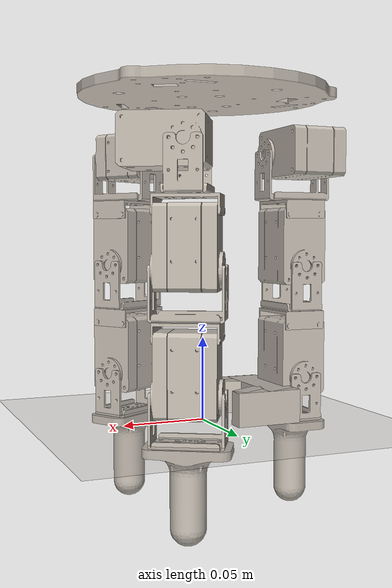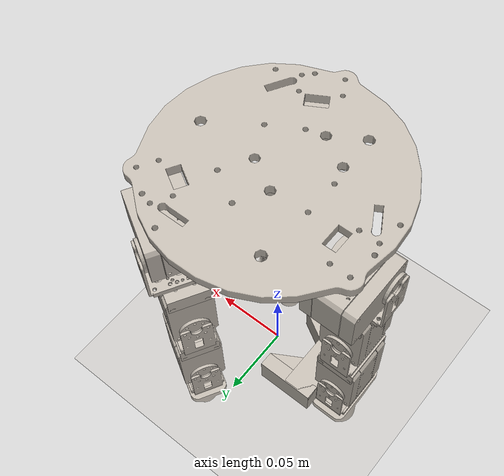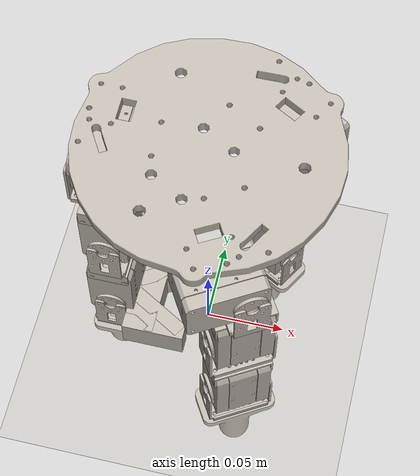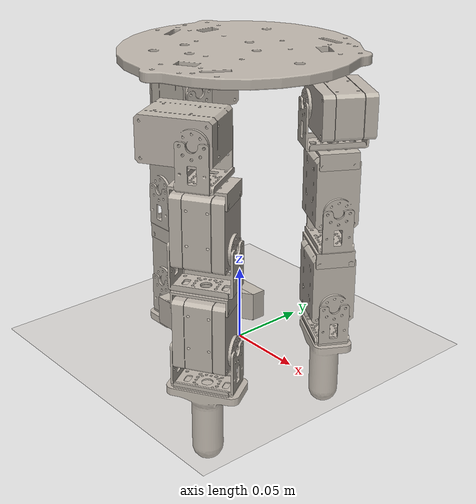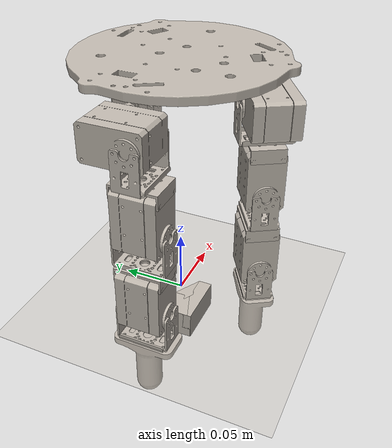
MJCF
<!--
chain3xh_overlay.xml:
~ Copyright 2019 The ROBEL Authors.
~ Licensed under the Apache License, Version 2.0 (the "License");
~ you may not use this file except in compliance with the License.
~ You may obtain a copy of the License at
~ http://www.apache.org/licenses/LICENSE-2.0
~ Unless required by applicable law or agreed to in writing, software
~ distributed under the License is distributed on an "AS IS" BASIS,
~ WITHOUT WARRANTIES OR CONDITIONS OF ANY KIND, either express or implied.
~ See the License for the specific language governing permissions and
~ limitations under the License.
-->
<?xml version="1.0"?>
<mujoco model="dclaw3xh_trapezoid_block_mating">
  <include file="/scenes/scene_default.xml"/>
  <include file="/robot/assets/dependencies_3xh_position.xml"/>
  <include file="/trapezoid_block/assets/dependencies_trapezoid_block.xml"/>

  <size njmax="8000" nconmax="4000"/>

  <worldbody>
    <camera name="canonical"            mode= "fixed" euler="0 0 1.5707963267948966" pos="0 0 0.192"/>
    <camera name="random"               mode= "fixed" euler="0 0 1.5707963267948966" pos="0 0 0.192"/>
    <camera name="canonical_nonfix"     mode= "fixed" euler="0 0 1.5707963267948966" pos="0 0 0.192"/>
    <camera name="random_nonfix"        mode= "fixed" euler="0 0 1.5707963267948966" pos="0 0 0.192"/>
    <camera name="canonical_overview"   mode= "fixed" euler="0 1 1.57" pos="0.3 0 0.4"/>
    <camera name="top"                  mode= "fixed" euler="0 0 1.57" pos="0 0 3"/>

    <body name="mount" pos="0 0 0.195" euler="0 0 0">
      <include file="./robot/assets/chain3xh_default.xml"/>
      <include file="./robot/assets/chain3xh_overlay.xml"/>
    </body>

    <body name="object1" pos="-0.04 0.0 0.0001">
      <include file="/trapezoid_block/assets/trapezoid_block1.xml"/>
    </body>

  </worldbody>
</mujoco>

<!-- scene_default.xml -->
<mujocoinclude>
  <asset>
    <texture name="skybox" type="skybox" builtin="gradient" rgb1=".08 .09 .10" rgb2="0 0 0" width="800" height="800" mark="random" markrgb=".8 .8 .8"/>

    <!-- Finger 1 -->
    <texture name="FFbase_xh28_tex"                type="2d" file="./pattern/pattern_default_crop.png" rgb1="1 1 1"/>
    <texture name="FF10_xh28_tex"                  type="2d" file="./pattern/pattern_default_crop.png" rgb1="1 1 1"/>
    <texture name="FF10_metal_clamping_tex"        type="2d" file="./pattern/pattern_default_crop.png" rgb1="1 1 1"/>
    <texture name="FF10_metal_clamping_small_tex"  type="2d" file="./pattern/pattern_default_crop.png" rgb1="1 1 1"/>
    <texture name="FFL11_xh28_tex"                 type="2d" file="./pattern/pattern_default_crop.png" rgb1="1 1 1"/>
    <texture name="FFL11_metal_clamping_tex"       type="2d" file="./pattern/pattern_default_crop.png" rgb1="1 1 1"/>
    <texture name="FFL11_metal_clamping_small_tex" type="2d" file="./pattern/pattern_default_crop.png" rgb1="1 1 1"/>
    <texture name="FFL11_plastic_finger_tex"       type="2d" file="./pattern/pattern_default_crop.png" rgb1="1 1 1"/>
    <texture name="FFL12_metal_clamping_tex"       type="2d" file="./pattern/pattern_default_crop.png" rgb1="1 1 1"/>
    <texture name="FFL12_plastic_finger_tex"       type="2d" file="./pattern/pattern_default_crop.png" rgb1="1 1 1"/>
    <texture name="FFL12_optoforce_sensor_tex"     type="2d" file="./pattern/pattern_default_crop.png" rgb1="1 1 1"/>
    <texture name="FFL12_optoforce_base_tex"       type="2d" file="./pattern/pattern_default_crop.png" rgb1="1 1 1"/>
    <material name="FFbase_xh28_mat"                shininess="0.03" specular="0.75" texture="FFbase_xh28_tex"></material>
    <material name="FF10_xh28_mat"                  shininess="0.03" specular="0.75" texture="FF10_xh28_tex"></material>
    <material name="FF10_metal_clamping_mat"        shininess="0.03" specular="0.75" texture="FF10_metal_clamping_tex"></material>
    <material name="FF10_metal_clamping_small_mat"  shininess="0.03" specular="0.75" texture="FF10_metal_clamping_small_tex"></material>
    <material name="FFL11_xh28_mat"                 shininess="0.03" specular="0.75" texture="FFL11_xh28_tex"></material>
    <material name="FFL11_metal_clamping_mat"       shininess="0.03" specular="0.75" texture="FFL11_metal_clamping_tex"></material>
    <material name="FFL11_metal_clamping_small_mat" shininess="0.03" specular="0.75" texture="FFL11_metal_clamping_small_tex"></material>
    <material name="FFL11_plastic_finger_mat"       shininess="0.03" specular="0.75" texture="FFL11_plastic_finger_tex"></material>
    <material name="FFL12_metal_clamping_mat"       shininess="0.03" specular="0.75" texture="FFL12_metal_clamping_tex"></material>
    <material name="FFL12_plastic_finger_mat"       shininess="0.03" specular="0.75" texture="FFL12_plastic_finger_tex"></material>
    <material name="FFL12_optoforce_sensor_mat"     shininess="0.03" specular="0.75" texture="FFL12_optoforce_sensor_tex"></material>
    <material name="FFL12_optoforce_base_mat"       shininess="0.03" specular="0.75" texture="FFL12_optoforce_base_tex"></material>

    <!-- Finger 2 -->
    <texture name="MFbase_xh28_tex"                type="2d" file="./pattern/pattern_default_crop.png" rgb1="1 1 1"/>
    <texture name="MF20_xh28_tex"                  type="2d" file="./pattern/pattern_default_crop.png" rgb1="1 1 1"/>
    <texture name="MF20_metal_clamping_tex"        type="2d" file="./pattern/pattern_default_crop.png" rgb1="1 1 1"/>
    <texture name="MF20_metal_clamping_small_tex"  type="2d" file="./pattern/pattern_default_crop.png" rgb1="1 1 1"/>
    <texture name="MFL21_xh28_tex"                 type="2d" file="./pattern/pattern_default_crop.png" rgb1="1 1 1"/>
    <texture name="MFL21_metal_clamping_tex"       type="2d" file="./pattern/pattern_default_crop.png" rgb1="1 1 1"/>
    <texture name="MFL21_metal_clamping_small_tex" type="2d" file="./pattern/pattern_default_crop.png" rgb1="1 1 1"/>
    <texture name="MFL21_plastic_finger_tex"       type="2d" file="./pattern/pattern_default_crop.png" rgb1="1 1 1"/>
    <texture name="MFL22_metal_clamping_tex"       type="2d" file="./pattern/pattern_default_crop.png" rgb1="1 1 1"/>
    <texture name="MFL22_plastic_finger_tex"       type="2d" file="./pattern/pattern_default_crop.png" rgb1="1 1 1"/>
    <texture name="MFL22_optoforce_sensor_tex"     type="2d" file="./pattern/pattern_default_crop.png" rgb1="1 1 1"/>
    <texture name="MFL22_optoforce_base_tex"       type="2d" file="./pattern/pattern_default_crop.png" rgb1="1 1 1"/>
    <material name="MFbase_xh28_mat"                shininess="0.03" specular="0.75" texture="MFbase_xh28_tex"></material>
    <material name="MF20_xh28_mat"                  shininess="0.03" specular="0.75" texture="MF20_xh28_tex"></material>
    <material name="MF20_metal_clamping_mat"        shininess="0.03" specular="0.75" texture="MF20_metal_clamping_tex"></material>
    <material name="MF20_metal_clamping_small_mat"  shininess="0.03" specular="0.75" texture="MF20_metal_clamping_small_tex"></material>
    <material name="MFL21_xh28_mat"                 shininess="0.03" specular="0.75" texture="MFL21_xh28_tex"></material>
    <material name="MFL21_metal_clamping_mat"       shininess="0.03" specular="0.75" texture="MFL21_metal_clamping_tex"></material>
    <material name="MFL21_metal_clamping_small_mat" shininess="0.03" specular="0.75" texture="MFL21_metal_clamping_small_tex"></material>
    <material name="MFL21_plastic_finger_mat"       shininess="0.03" specular="0.75" texture="MFL21_plastic_finger_tex"></material>
    <material name="MFL22_metal_clamping_mat"       shininess="0.03" specular="0.75" texture="MFL22_metal_clamping_tex"></material>
    <material name="MFL22_plastic_finger_mat"       shininess="0.03" specular="0.75" texture="MFL22_plastic_finger_tex"></material>
    <material name="MFL22_optoforce_sensor_mat"     shininess="0.03" specular="0.75" texture="MFL22_optoforce_sensor_tex"></material>
    <material name="MFL22_optoforce_base_mat"       shininess="0.03" specular="0.75" texture="MFL22_optoforce_base_tex"></material>

    <!-- Finger 3 -->
    <texture name="THbase_xh28_tex"                type="2d" file="./pattern/pattern_default_crop.png" rgb1="1 1 1"/>
    <texture name="TH30_xh28_tex"                  type="2d" file="./pattern/pattern_default_crop.png" rgb1="1 1 1"/>
    <texture name="TH30_metal_clamping_tex"        type="2d" file="./pattern/pattern_default_crop.png" rgb1="1 1 1"/>
    <texture name="TH30_metal_clamping_small_tex"  type="2d" file="./pattern/pattern_default_crop.png" rgb1="1 1 1"/>
    <texture name="THL31_xh28_tex"                 type="2d" file="./pattern/pattern_default_crop.png" rgb1="1 1 1"/>
    <texture name="THL31_metal_clamping_tex"       type="2d" file="./pattern/pattern_default_crop.png" rgb1="1 1 1"/>
    <texture name="THL31_metal_clamping_small_tex" type="2d" file="./pattern/pattern_default_crop.png" rgb1="1 1 1"/>
    <texture name="THL31_plastic_finger_tex"       type="2d" file="./pattern/pattern_default_crop.png" rgb1="1 1 1"/>
    <texture name="THL32_metal_clamping_tex"       type="2d" file="./pattern/pattern_default_crop.png" rgb1="1 1 1"/>
    <texture name="THL32_plastic_finger_tex"       type="2d" file="./pattern/pattern_default_crop.png" rgb1="1 1 1"/>
    <texture name="THL32_optoforce_sensor_tex"     type="2d" file="./pattern/pattern_default_crop.png" rgb1="1 1 1"/>
    <texture name="THL32_optoforce_base_tex"       type="2d" file="./pattern/pattern_default_crop.png" rgb1="1 1 1"/>
    <material name="THbase_xh28_mat"                shininess="0.03" specular="0.75" texture="THbase_xh28_tex"></material>
    <material name="TH30_xh28_mat"                  shininess="0.03" specular="0.75" texture="TH30_xh28_tex"></material>
    <material name="TH30_metal_clamping_mat"        shininess="0.03" specular="0.75" texture="TH30_metal_clamping_tex"></material>
    <material name="TH30_metal_clamping_small_mat"  shininess="0.03" specular="0.75" texture="TH30_metal_clamping_small_tex"></material>
    <material name="THL31_xh28_mat"                 shininess="0.03" specular="0.75" texture="THL31_xh28_tex"></material>
    <material name="THL31_metal_clamping_mat"       shininess="0.03" specular="0.75" texture="THL31_metal_clamping_tex"></material>
    <material name="THL31_metal_clamping_small_mat" shininess="0.03" specular="0.75" texture="THL31_metal_clamping_small_tex"></material>
    <material name="THL31_plastic_finger_mat"       shininess="0.03" specular="0.75" texture="THL31_plastic_finger_tex"></material>
    <material name="THL32_metal_clamping_mat"       shininess="0.03" specular="0.75" texture="THL32_metal_clamping_tex"></material>
    <material name="THL32_plastic_finger_mat"       shininess="0.03" specular="0.75" texture="THL32_plastic_finger_tex"></material>
    <material name="THL32_optoforce_sensor_mat"     shininess="0.03" specular="0.75" texture="THL32_optoforce_sensor_tex"></material>
    <material name="THL32_optoforce_base_mat"       shininess="0.03" specular="0.75" texture="THL32_optoforce_base_tex"></material>

    <!-- xh28 -->
    <texture name="xh28_tex" type="2d" file="./pattern/pattern_default_crop.png" rgb1="1 1 1"/>
    <material name="xh28_mat" shininess="0.03" specular="0.75" texture="xh28_tex"></material>

    <!-- acrylic_circle -->
    <texture name="acrylic_circle_tex" type="2d" file="./pattern/pattern_default_crop.png" rgb1="1 1 1"/>
    <material name="acrylic_circle_mat" shininess="0.03" specular="0.75" texture="acrylic_circle_tex"></material>

    <!-- floor -->
    <texture name="floor_tex" type="2d" file="./pattern/pattern_default_crop.png" rgb1="1 1 1"/>
    <material name="floor_mat" shininess="0.03" specular="0.75" texture="floor_tex"></material>

    <!-- mount -->
    <texture name="mount_tex" type="2d" file="./pattern/pattern_default_crop.png" rgb1="1 1 1"/>
    <material name="mount_mat" shininess="0.03" specular="0.75" texture="mount_tex"></material>

    <!-- valve_3 -->
    <texture name="valve_3_tex" type="2d" file="./pattern/pattern_default_crop.png" rgb1="1 1 1"/>
    <material name="valve_3_mat" shininess="0.03" specular="0.75" texture="valve_3_tex"></material>

    <!-- valve_3 individual -->
    <texture name="valve_3fin_handle_1_tex" type="2d" file="./pattern/pattern_default_crop.png" rgb1="1 1 1"/>
    <texture name="valve_3fin_handle_2_tex" type="2d" file="./pattern/pattern_default_crop.png" rgb1="1 1 1"/>
    <texture name="valve_3fin_handle_3_tex" type="2d" file="./pattern/pattern_default_crop.png" rgb1="1 1 1"/>
    <texture name="valve_3fin_center_tex"   type="2d" file="./pattern/pattern_default_crop.png" rgb1="1 1 1"/>
    <material name="valve_3fin_handle_1_mat" shininess="0.03" specular="0.75" texture="valve_3fin_handle_1_tex"></material>
    <material name="valve_3fin_handle_2_mat" shininess="0.03" specular="0.75" texture="valve_3fin_handle_2_tex"></material>
    <material name="valve_3fin_handle_3_mat" shininess="0.03" specular="0.75" texture="valve_3fin_handle_3_tex"></material>
    <material name="valve_3fin_center_mat"   shininess="0.03" specular="0.75" texture="valve_3fin_center_tex"></material>

  </asset>

  <visual>
    <quality shadowsize="1024" offsamples="4"/>
  </visual>

  <worldbody>

    <light name="light_top_1" directional="true" diffuse=".3 .3 .3" specular="0.3 0.3 0.3" pos="-0.5 -0.5 1.0" active="false" dir="0.5 0.5 -1"/>
    <light name="light_top_2" directional="true" diffuse=".3 .3 .3" specular="0.3 0.3 0.3" pos="0.0 -0.5 1.0"  active="false" dir="0.0 0.5 -1"/>
    <light name="light_top_3" directional="true" diffuse=".3 .3 .3" specular="0.3 0.3 0.3" pos="0.5 -0.5 1.0"  active="true" dir="-0.5 0.5 -1"/>
    <light name="light_top_4" directional="true" diffuse=".3 .3 .3" specular="0.3 0.3 0.3" pos="-0.5 0.0 1.0"  active="false" dir="0.5 0 -1"/>
    <light name="light_top_5" directional="true" diffuse=".3 .3 .3" specular="0.3 0.3 0.3" pos="0.0 0.0 1.0"   active="false" dir="0 0 -1"/>
    <light name="light_top_6" directional="true" diffuse=".3 .3 .3" specular="0.3 0.3 0.3" pos="0.5 0.0 1.0"   active="false" dir="-0.5 0 -1"/>
    <light name="light_top_7" directional="true" diffuse=".3 .3 .3" specular="0.3 0.3 0.3" pos="-0.5 0.5 1.0"  active="true" dir=" 0.5 -0.5 -1"/>
    <light name="light_top_8" directional="true" diffuse=".3 .3 .3" specular="0.3 0.3 0.3" pos="0.0 0.5 1.0"   active="false" dir=" 0.0 -0.5 -1"/>
    <light name="light_top_9" directional="true" diffuse=".3 .3 .3" specular="0.3 0.3 0.3" pos="0.5 0.5 1.0"   active="false" dir="-0.5 -0.5 -1"/>

    <light name="light_side_1" directional="true" diffuse=".3 .3 .3" specular="0.3 0.3 0.3" pos="0.0 0.5 0.2"   active="false" dir=" 0.0 -0.5 0.0"/>
    <light name="light_side_2" directional="true" diffuse=".3 .3 .3" specular="0.3 0.3 0.3" pos="0.0 -0.5 0.2"  active="false" dir=" 0.0 0.5 0.0"/>
    <light name="light_side_3" directional="true" diffuse=".3 .3 .3" specular="0.3 0.3 0.3" pos="0.5 0.0 0.2"   active="false" dir="-0.5 0.0 0.0"/>
    <light name="light_side_4" directional="true" diffuse=".3 .3 .3" specular="0.3 0.3 0.3" pos="-0.5 0.0 0.2"  active="false" dir=" 0.5 0.0 0.0"/>
    <light name="light_side_5" directional="true" diffuse=".3 .3 .3" specular="0.3 0.3 0.3" pos="-0.5 0.5 0.2"  active="false" dir=" 0.5 -0.5 0.0"/>
    <light name="light_side_6" directional="true" diffuse=".3 .3 .3" specular="0.3 0.3 0.3" pos=" 0.5 -0.5 0.2" active="false" dir="-0.5 0.5 0.0"/>
    <light name="light_side_7" directional="true" diffuse=".3 .3 .3" specular="0.3 0.3 0.3" pos="-0.5 -0.5 0.2" active="false" dir=" 0.5 0.5 0.0"/>
    <light name="light_side_8" directional="true" diffuse=".3 .3 .3" specular="0.3 0.3 0.3" pos=" 0.5  0.5 0.2" active="false" dir="-0.5 -0.5 0.0"/>

    <geom name="floor" pos="0 0 0"  size="0.25 0.25 .1" conaffinity="1" contype="1" type="plane" condim="3" material="floor_mat"/>
    <site name="xaxis" pos=".5 0 0" size=".005 .5" type="capsule" rgba="1 0 0 .25" euler="0 1.57 0" group="3"/>
    <site name="yaxis" pos="0 .5 0" size=".005 .5" type="capsule" rgba="0 1 0 .25" euler="1.57 0 0" group="3"/>
  </worldbody>
</mujocoinclude>

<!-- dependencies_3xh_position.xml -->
<mujocoinclude>
  <compiler angle="radian" inertiafromgeom="auto" inertiagrouprange="3 5" />
  <option timestep="0.0025" iterations="50" tolerance="1e-10" solver="Newton" jacobian="dense" cone="elliptic"/>
  <asset>
    <mesh name="xh28"                 file="./robot/meshes/xh_base_high_poly.stl"            scale=".001 .001 .001"/>
    <mesh name="acrylic_circle"       file="./robot/meshes/acrylic_circle.stl"               scale=".1 .1 .1"/>
    <mesh name="plastic_finger"       file="./robot/meshes/xh_finger_tip.stl"                scale=".001 .001 .001"/>
    <mesh name="finger_for_optoforce" file="./robot/meshes/finger_for_optoforce.stl"         scale=".001 .001 .001"/>
    <mesh name="optoforce_sensor"     file="./robot/meshes/OPTOFORCE_OMD-20-SE-40N.stl"      scale=".001 .001 .001"/>
    <mesh name="optoforce_base"       file="./robot/meshes/optoforce_base.stl"               scale=".001 .001 .001"/>
    <mesh name="metal_clamping"       file="./robot/meshes/xh_clamping_high_poly.stl"        scale=".001 .001 .001"/>
    <mesh name="metal_clamping_small" file="./robot/meshes/xh_clamping_small_high_poly.stl"  scale=".001 .001 .001"/>
    <mesh name="plastic_top"          file="./robot/meshes/xh_white_top_high_poly.stl"       scale=".001 .001 .001"/>
    <mesh name="xh28_hull"            file="./robot/meshes/xh_base_hull.stl"                 scale=".001 .001 .001"/>
    <mesh name="xh28_hull_top"        file="./robot/meshes/xh_base_hull_top.stl"             scale=".001 .001 .001"/>
  </asset>
  <default>
    <default class="dclaw3xh">
      <joint limited="true" damping=".1" armature="0.001"/>
      <geom contype="0"   conaffinity="0" condim="4" group="1" margin="0.0005" material="metal_black" type="mesh"/>
      <motor ctrlrange="-1.57 1.57" ctrllimited="true"/>
      <site group="1"/>
      <default class="overlay">
        <geom contype="0" conaffinity="0" group="3" type="mesh" material="greenish"/>
        <joint damping="100" frictionloss="100" armature="0"/>
        <site group="3"/>
      </default>
      <default class="phy_metal">
        <geom contype="1" conaffinity="1" group="4" type="mesh" rgba="0.0 0.0 1.0 .3"/>
        <site group="4"/>
      </default>
      <default class="phy_plastic">
        <geom contype="1" conaffinity="1" group="4" type="mesh" rgba="0.0 0.0 1.0 .3" friction=".2 0.005 0.0001"/>
        <site group="4"/>
      </default>

      <default class="phy_optoforce">
          <geom contype="1" conaffinity="1" group="4" type="sphere" size="0.011" mass=".009" pos="0 0 0" rgba="0 0 1 .3" friction=".2 0.005 0.0001"/>
          <site group="4"/>
      </default>
      <default class="site_optoforce">
          <site type="sphere" size="0.011" rgba="1 0 1 .5" pos="0 0 0" group="5"/>
      </default>

    </default>
  </default>
  <asset>
    <material name="metal_black" specular="1" shininess="1" rgba="0.2 0.2 0.2 1.0"/>
    <material name="metal_grey" specular="1" shininess="1" rgba="0.5 0.5 0.5 1.0"/>
    <material name="plastic" specular="0.3" shininess="0" rgba="1 1 1 1"/>
    <material name="acrylic" specular="0.3" shininess="0" rgba="1 1 1 .2"/>
    <material name="greenish" specular="0.0" shininess="0" rgba="0.3 1 0.3 1"/>
  </asset>

  <actuator>
    <position name="FFJ10_pos_sensor" kp="2" joint="FFJ10" class="dclaw3xh"  />
    <position name="FFJ11_pos_sensor" kp="2" joint="FFJ11" class="dclaw3xh"  />
    <position name="FFJ12_pos_sensor" kp="2" joint="FFJ12" class="dclaw3xh"  />
    <position name="MFJ20_pos_sensor" kp="2" joint="MFJ20" class="dclaw3xh"  />
    <position name="MFJ21_pos_sensor" kp="2" joint="MFJ21" class="dclaw3xh"  />
    <position name="MFJ22_pos_sensor" kp="2" joint="MFJ22" class="dclaw3xh"  />
    <position name="THJ30_pos_sensor" kp="2" joint="THJ30" class="dclaw3xh"  />
    <position name="THJ31_pos_sensor" kp="2" joint="THJ31" class="dclaw3xh"  />
    <position name="THJ32_pos_sensor" kp="2" joint="THJ32" class="dclaw3xh"  />
  </actuator>

  <sensor>
    <force name="FFL12_force" site="FFL12_site_optoforce"/>
    <force name="MFL22_force" site="MFL22_site_optoforce"/>
    <force name="THL32_force" site="THL32_site_optoforce"/>
  </sensor>

</mujocoinclude>

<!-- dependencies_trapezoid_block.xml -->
<mujocoinclude>
  <compiler angle="radian" inertiafromgeom="auto" inertiagrouprange="3 5"/>
  <option timestep="0.0025"/>
  <asset>
    <!-- texture -->
    <texture name="trapezoid_block1_tex" type="cube" file="./pattern/pattern_default_crop.png"/>
    <texture name="trapezoid_block2_tex" type="cube" file="./pattern/pattern_default_crop.png"/>
    <!-- material -->
    <material name="trapezoid_block1_mat" shininess="0.03" specular="0.75" texture="trapezoid_block1_tex"/>
    <material name="trapezoid_block2_mat" shininess="0.03" specular="0.75" texture="trapezoid_block2_tex"/>

    <material name="station_metal_grey"   specular="1"    shininess="1" rgba="0.5 0.5 0.5 1.0"/>
  </asset>

  <default>
    <default class="station">
      <joint limited="true" damping=".1" armature="0.001"/>
      <geom contype="1" conaffinity="1" condim="4" group="2" margin="0.0005"/>
      <site group="2"/>

      <default class="station_viz">
        <geom contype="0" conaffinity="0" type="mesh"/>
        <default class="station_viz_trapezoid_block1">
          <geom material="trapezoid_block1_mat"/>
        </default>
        <default class="station_viz_trapezoid_block2">
          <geom material="trapezoid_block2_mat"/>
        </default>
      </default>

      <default class="station_phy">
        <geom contype="1" conaffinity="1" group="4" type="mesh" rgba="0.0 0.0 1.0 .3"/>
        <site group="4"/>
        <default class="station_phy_plastic">
          <geom material="station_metal_grey" friction=".2 0.005 0.0001"/>
        </default>
      </default>
    </default>
  </default>

</mujocoinclude>

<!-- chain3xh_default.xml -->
<mujocoinclude>
  <body name="dClaw" euler="3.14 0 0" childclass="dclaw3xh">
    <geom mesh="acrylic_circle"                                           material="acrylic_circle_mat"/>
    <geom class="phy_metal" type="cylinder" size="0.075 0.004" mass=".11" />
    <site name="S_grasp" pos="0 0 0.24" type="sphere" size="0.01" group="4"/>
    <!-- INDEX/FIRST FINGER -->
    <body name="FFbase" pos=".03 -0.052 .020" euler="0 0 .52">
      <geom name="FFbase_xh28" mesh="xh28" pos="0 0 0.01425" euler="1.57 0 1.57" material="FFbase_xh28_mat"/>
      <geom class="phy_metal" type="box" pos=".012 0 0.014" size="0.024 0.0175 0.015" mass=".093" />
      <body name="FF10" pos="0 0 0.01425" euler="0 0 3.14">
        <geom name="FF10_metal_clamping"        mesh="metal_clamping"                       euler="0 0 1.57"    material="FF10_metal_clamping_mat"/>
        <geom name="FF10_metal_clamping_small"  mesh="metal_clamping_small" pos="0 0 0.055" euler="3.14 0 0"    material="FF10_metal_clamping_small_mat"/>
        <geom name="FF10_xh28"                  mesh="xh28"                 pos="0 0 0.068" euler="1.57 1.57 0" material="FF10_xh28_mat"/>
        <geom class="phy_metal" type="box" pos="0 0 0.056" size="0.0175 0.015 0.024" mass=".093"     />
        <geom class="phy_metal" type="box" pos="0.0 0 0.026" size="0.0125 0.0214 0.003" mass=".003"  />
        <geom class="phy_metal" type="box" pos="0 0.02 0.013" size="0.011 0.0012 0.016" mass=".002"  />
        <geom class="phy_metal" type="box" pos="0 -0.02 0.013" size="0.011 0.0012 0.016" mass=".002" />
        <geom class="phy_metal" type="box" pos="0 0 0.033" size="0.019 0.014 0.006" mass=".005"      />
        <joint name="FFJ10" type="hinge" axis="0 1 0" range="-1.57 1.57"/>
        <body name="FFL11" pos="0 0 0.0675">
          <geom name="FFL11_metal_clamping_small" mesh="metal_clamping_small" pos="0 0 0.055"   euler="3.14 0 0"    material="FFL11_metal_clamping_small_mat"/>
          <geom name="FFL11_xh28"                 mesh="xh28"                 pos="0 0 0.0686"  euler="1.57 1.57 0" material="FFL11_xh28_mat"/>
          <geom name="FFL11_metal_clamping"       mesh="metal_clamping"                                             material="FFL11_metal_clamping_mat"/>
          <geom class="phy_metal" type="box" pos="0 0 0.056" size="0.0175 0.015 0.024" mass=".093"     />
          <geom class="phy_metal" type="box" pos="0 0 0.026" size="0.0214 0.0125 0.003" mass=".003"    />
          <geom class="phy_metal" type="box" pos="0.02 0 0.013" size="0.0012 0.011 0.016" mass=".002"  />
          <geom class="phy_metal" type="box" pos="-0.02 0 0.013" size="0.0012 0.011 0.016" mass=".002" />
          <geom class="phy_metal" type="box" pos="0 0 0.033" size="0.019 0.014 0.006" mass=".005"      />
          <joint name="FFJ11" type="hinge" axis="1 0 0" range="-1.57 1.57"/>
          <body name="FFL12" pos="0 0 0.068">
            <geom name="FFL12_metal_clamping" mesh="metal_clamping"                 material="FFL12_metal_clamping_mat"/>
            <geom name="FFL12_plastic_finger" mesh="plastic_finger" pos="0 0 0.046" material="FFL12_plastic_finger_mat"/>
            <geom class="phy_metal" type="box" pos="0.0 0 0.026" size="0.0214 0.0125 0.003" mass=".003" />
            <geom class="phy_metal" type="box" pos="0.02 0 0.013" size="0.0012 0.011 0.016" mass=".002" />
            <geom class="phy_metal" type="box" pos="-0.02 0 0.013" size="0.0012 0.011 0.016" mass=".002"/>
            <geom class="phy_plastic" type="capsule" pos="0 0 0.053" size="0.011 0.02" mass=".018"      />
            <geom class="phy_plastic" type="box" pos="0 0 0.03" size="0.0245 0.014 0.003" mass=".007"   />
            <joint name="FFJ12" type="hinge" axis="1 0 0" range="-1.57 1.57"/>
          </body>
        </body>
      </body>
    </body>
    <!-- MIDDLE FINGER -->
    <body name="MFbase" pos=".03 0.052 .020" euler="0 0 2.6">
      <geom name="MFbase_xh28" mesh="xh28" pos="0 0 0.01425" euler="1.57 0 1.57"  material="MFbase_xh28_mat"/>
      <geom class="phy_metal" type="box" pos=".012 0 0.014" size="0.024 0.0175 0.015" mass=".093" />
      <body name="MF20" pos="0 0 0.01425" euler="0 0 3.14">
        <geom name="MF20_metal_clamping"        mesh="metal_clamping"                       euler="0 0 1.57"    material="MF20_metal_clamping_mat"/>
        <geom name="MF20_metal_clamping_small"  mesh="metal_clamping_small" pos="0 0 0.055" euler="3.14 0 0"    material="MF20_metal_clamping_small_mat"/>
        <geom name="MF20_xh28"                  mesh="xh28"                 pos="0 0 0.068" euler="1.57 1.57 0" material="MF20_xh28_mat"/>
        <geom class="phy_metal" type="box" pos="0 0 0.056" size="0.0175 0.015 0.024" mass=".093"     />
        <geom class="phy_metal" type="box" pos="0.0 0 0.026" size="0.0125 0.0214 0.003" mass=".003"  />
        <geom class="phy_metal" type="box" pos="0 0.02 0.013" size="0.011 0.0012 0.016" mass=".002"  />
        <geom class="phy_metal" type="box" pos="0 -0.02 0.013" size="0.011 0.0012 0.016" mass=".002" />
        <geom class="phy_metal" type="box" pos="0 0 0.033" size="0.019 0.014 0.006" mass=".005"      />
        <joint name="MFJ20" type="hinge" axis="0 1 0" range="-1.57 1.57"/>
        <body name="MFL21" pos="0 0 0.0675">
          <geom name="MFL21_metal_clamping_small" mesh="metal_clamping_small" pos="0 0 0.055"   euler="3.14 0 0"    material="MFL21_metal_clamping_small_mat"/>
          <geom name="MFL21_xh28"                 mesh="xh28"                 pos="0 0 0.0686"  euler="1.57 1.57 0" material="MFL21_xh28_mat"/>
          <geom name="MFL21_metal_clamping"       mesh="metal_clamping"                                             material="MFL21_metal_clamping_mat"/>
          <geom class="phy_metal" type="box" pos="0 0 0.056" size="0.0175 0.015 0.024" mass=".093"     />
          <geom class="phy_metal" type="box" pos="0 0 0.026" size="0.0214 0.0125 0.003" mass=".003"    />
          <geom class="phy_metal" type="box" pos="0.02 0 0.013" size="0.0012 0.011 0.016" mass=".002"  />
          <geom class="phy_metal" type="box" pos="-0.02 0 0.013" size="0.0012 0.011 0.016" mass=".002" />
          <geom class="phy_metal" type="box" pos="0 0 0.033" size="0.019 0.014 0.006" mass=".005"      />
          <joint name="MFJ21" type="hinge" axis="1 0 0" range="-1.57 1.57"/>
          <body name="MFL22" pos="0 0 0.068">
            <geom name="MFL22_metal_clamping" mesh="metal_clamping"                 material="MFL22_metal_clamping_mat"/>
            <geom name="MFL22_plastic_finger" mesh="plastic_finger" pos="0 0 0.046" material="MFL22_plastic_finger_mat"/>
            <geom class="phy_metal" type="box" pos="0.0 0 0.026" size="0.0214 0.0125 0.003" mass=".003" />
            <geom class="phy_metal" type="box" pos="0.02 0 0.013" size="0.0012 0.011 0.016" mass=".002" />
            <geom class="phy_metal" type="box" pos="-0.02 0 0.013" size="0.0012 0.011 0.016" mass=".002"/>
            <geom class="phy_plastic" type="capsule" pos="0 0 0.053" size="0.011 0.02" mass=".018"      />
            <geom class="phy_plastic" type="box" pos="0 0 0.03" size="0.0245 0.014 0.003" mass=".007"   />
            <joint name="MFJ22" type="hinge" axis="1 0 0" range="-1.57 1.57"/>
          </body>
        </body>
      </body>
    </body>
    <!-- THUMB -->
    <body name="THbase" pos="-.06 0 .020" euler="0 0 -1.57">
      <geom name="THbase_xh28" mesh="xh28" pos="0 0 0.01425" euler="1.57 0 1.57" material="THbase_xh28_mat"/>
      <geom class="phy_metal" type="box" pos=".012 0 0.014" size="0.024 0.0175 0.015" mass=".093" />
      <body name="TH30" pos="0 0 0.01425" euler="0 0 3.14">
        <geom name="TH30_metal_clamping"        mesh="metal_clamping"                       euler="0 0 1.57"    material="TH30_metal_clamping_mat"/>
        <geom name="TH30_metal_clamping_small"  mesh="metal_clamping_small" pos="0 0 0.055" euler="3.14 0 0"    material="TH30_metal_clamping_small_mat"/>
        <geom name="TH30_xh28"                  mesh="xh28"                 pos="0 0 0.068" euler="1.57 1.57 0" material="TH30_xh28_mat"/>
        <geom class="phy_metal" type="box" pos="0 0 0.056" size="0.0175 0.015 0.024" mass=".093"     />
        <geom class="phy_metal" type="box" pos="0.0 0 0.026" size="0.0125 0.0214 0.003" mass=".003"  />
        <geom class="phy_metal" type="box" pos="0 0.02 0.013" size="0.011 0.0012 0.016" mass=".002"  />
        <geom class="phy_metal" type="box" pos="0 -0.02 0.013" size="0.011 0.0012 0.016" mass=".002" />
        <geom class="phy_metal" type="box" pos="0 0 0.033" size="0.019 0.014 0.006" mass=".005"      />
        <joint name="THJ30" type="hinge" axis="0 1 0" range="-1.57 1.57"/>
        <body name="THL31" pos="0 0 0.0675">
          <geom name="THL31_metal_clamping_small" mesh="metal_clamping_small" pos="0 0 0.055"   euler="3.14 0 0"    material="THL31_metal_clamping_small_mat"/>
          <geom name="THL31_xh28"                 mesh="xh28"                 pos="0 0 0.0686"  euler="1.57 1.57 0" material="THL31_xh28_mat"/>
          <geom name="THL31_metal_clamping"       mesh="metal_clamping"                                             material="THL31_metal_clamping_mat"/>
          <geom class="phy_metal" type="box" pos="0 0 0.056" size="0.0175 0.015 0.024" mass=".093"    />
          <geom class="phy_metal" type="box" pos="0 0 0.026" size="0.0214 0.0125 0.003" mass=".003"   />
          <geom class="phy_metal" type="box" pos="0.02 0 0.013" size="0.0012 0.011 0.016" mass=".002" />
          <geom class="phy_metal" type="box" pos="-0.02 0 0.013" size="0.0012 0.011 0.016" mass=".002"/>
          <geom class="phy_metal" type="box" pos="0 0 0.033" size="0.019 0.014 0.006" mass=".005"     />
          <joint name="THJ31" type="hinge" axis="1 0 0" range="-1.57 1.57"/>
          <body name="THL32" pos="0 0 0.068">
            <geom name="THL32_metal_clamping" mesh="metal_clamping"                 material="THL32_metal_clamping_mat"/>
            <geom name="THL32_plastic_finger" mesh="plastic_finger" pos="0 0 0.046" material="THL32_plastic_finger_mat"/>
            <geom class="phy_metal" type="box" pos="0.0 0 0.026" size="0.0214 0.0125 0.003" mass=".003" />
            <geom class="phy_metal" type="box" pos="0.02 0 0.013" size="0.0012 0.011 0.016" mass=".002" />
            <geom class="phy_metal" type="box" pos="-0.02 0 0.013" size="0.0012 0.011 0.016" mass=".002"/>
            <geom class="phy_plastic" type="capsule" pos="0 0 0.053" size="0.011 0.02" mass=".018"      />
            <geom class="phy_plastic" type="box" pos="0 0 0.03" size="0.0245 0.014 0.003" mass=".007"   />
            <joint name="THJ32" type="hinge" axis="1 0 0" range="-1.57 1.57"/>
          </body>
        </body>
      </body>
    </body>
  </body>
</mujocoinclude>

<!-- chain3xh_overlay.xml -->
<mujocoinclude>
  <body name="_dclaw" euler="3.14 0 0" childclass="overlay">
    <geom mesh="acrylic_circle"/>
    <!-- INDEX/FIRST FINGER -->
    <body name="_FFbase" pos=".03 -0.052 .003" euler="0 0 .52">
      <geom mesh="xh28" pos="0 0 0.01425" euler="1.57 0 1.57"/>
      <body name="_FF10" pos="0 0 0.01425" euler="0 0 3.14">
        <geom mesh="metal_clamping" euler="0 0 1.57"/>
        <geom mesh="metal_clamping_small" pos="0 0 0.055" euler="3.14 0 0"/>
        <geom mesh="xh28" pos="0 0 0.068" euler="1.57 1.57 0"/>
        <joint name="_FFJ10" type="hinge" axis="0 1 0" range="-.45 1.35"/>
        <body name="_FFL11" pos="0 0 0.0675">
          <geom mesh="metal_clamping_small" pos="0 0 0.055" euler="3.14 0 0"/>
          <geom mesh="xh28" pos="0 0 0.0686" euler="1.57 1.57 0"/>
          <geom mesh="metal_clamping"/>
          <joint name="_FFJ11" type="hinge" axis="1 0 0" range="-2 2"/>
          <body name="_FFL12" pos="0 0 0.068">
            <geom mesh="metal_clamping"/>
            <geom mesh="plastic_finger" pos="0 0 0.046"/>
            <joint name="_FFJ12" type="hinge" axis="1 0 0" range="-2 2"/>
            <site name="_FFtip" type="sphere" pos="0 0 .076" size="0.01" rgba="1 .3 .3 1"/>
          </body>
        </body>
      </body>
    </body>
    <!-- MIDDLE FINGER -->
    <body name="_MFbase" pos=".03 0.052 .003" euler="0 0 2.62">
      <geom mesh="xh28" pos="0 0 0.01425" euler="1.57 0 1.57"/>
      <body name="_MF20" pos="0 0 0.01425" euler="0 0 3.14">
        <geom mesh="metal_clamping" euler="0 0 1.57"/>
        <geom mesh="metal_clamping_small" pos="0 0 0.055" euler="3.14 0 0"/>
        <geom mesh="xh28" pos="0 0 0.068" euler="1.57 1.57 0"/>
        <joint name="_MFJ20" type="hinge" axis="0 1 0" range="-.45 1.35"/>
        <body name="_MFL21" pos="0 0 0.0675">
          <geom mesh="metal_clamping_small" pos="0 0 0.055" euler="3.14 0 0"/>
          <geom mesh="xh28" pos="0 0 0.0686" euler="1.57 1.57 0"/>
          <geom mesh="metal_clamping"/>
          <joint name="_MFJ21" type="hinge" axis="1 0 0" range="-2 2"/>
          <body name="_MFL22" pos="0 0 0.068">
            <geom mesh="metal_clamping"/>
            <geom mesh="plastic_finger" pos="0 0 0.046"/>
            <joint name="_MFJ22" type="hinge" axis="1 0 0" range="-2 2"/>
            <site name="_MFtip" type="sphere" pos="0 0 .076" size="0.01" rgba=".3 1 .3 1"/>
          </body>
        </body>
      </body>
    </body>
    <!-- THUMB -->
    <body name="_THbase" pos="-.06 0 .003" euler="0 0 -1.57">
      <geom mesh="xh28" pos="0 0 0.01425" euler="1.57 0 1.57"/>
      <body name="_TH30" pos="0 0 0.01425" euler="0 0 3.14">
        <geom mesh="metal_clamping" euler="0 0 1.57"/>
        <geom mesh="metal_clamping_small" pos="0 0 0.055" euler="3.14 0 0"/>
        <geom mesh="xh28" pos="0 0 0.068" euler="1.57 1.57 0"/>
        <joint name="_THJ30" type="hinge" axis="0 1 0" range="-.45 1.35"/>
        <body name="_THL31" pos="0 0 0.0675">
          <geom mesh="metal_clamping_small" pos="0 0 0.055" euler="3.14 0 0"/>
          <geom mesh="xh28" pos="0 0 0.0686" euler="1.57 1.57 0"/>
          <geom mesh="metal_clamping"/>
          <joint name="_THJ31" type="hinge" axis="1 0 0" range="-2 2"/>
          <body name="_THL32" pos="0 0 0.068">
            <geom mesh="metal_clamping"/>
            <geom mesh="plastic_finger" pos="0 0 0.046"/>
            <joint name="_THJ32" type="hinge" axis="1 0 0" range="-2 2"/>
            <site name="_THtip" type="sphere" pos="0 0 .076" size="0.01" rgba=".3 .3 1 1"/>
          </body>
        </body>
      </body>
    </body>
  </body>
</mujocoinclude>

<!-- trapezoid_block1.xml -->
<mujocoinclude name="trapezoid_block1">
  <joint type="free" name="block1_jnt"/>
  <body name="trapezoid_block1" pos=".0 0.00 .01" euler="0 0 0">
    <!-- visual -->
    <geom class="station_viz_trapezoid_block1"  type="box" pos="0 0 0"           size=".01 .03 .01"  name="trapezoid_block1_geom_vis1"   />
    <geom class="station_viz_trapezoid_block1"  type="box" pos=".01  .0257 0"    size=".02 .005 .01" name="trapezoid_block1_geom_vis2"   />
    <geom class="station_viz_trapezoid_block1"  type="box" pos=".01015  .015 0"  size=".02 .005 .01" name="trapezoid_block1_geom_vis2_1"  euler="0 0 0.5235987755982988"/>
    <geom class="station_viz_trapezoid_block1"  type="box" pos=".01 -.0257 0"    size=".02 .005 .01" name="trapezoid_block1_geom_vis3"   />
    <geom class="station_viz_trapezoid_block1"  type="box" pos=".01015 -.015 0"  size=".02 .005 .01" name="trapezoid_block1_geom_vis3_1"  euler="0 0 -0.5235987755982988"/>

    <!-- physical -->
    <geom class="station_phy_plastic"           type="box" pos="0 0 0"           size=".01 .03 .01"  mass="0.05"/>
    <geom class="station_phy_plastic"           type="box" pos=".01  .0257 0"    size=".02 .005 .01" mass="0.05"/>
    <geom class="station_phy_plastic"           type="box" pos=".01015  .015 0"  size=".02 .005 .01" mass="0.05" euler="0 0 0.5235987755982988"/>
    <geom class="station_phy_plastic"           type="box" pos=".01 -.0257 0"    size=".02 .005 .01" mass="0.05"/>
    <geom class="station_phy_plastic"           type="box" pos=".01015 -.015 0"  size=".02 .005 .01" mass="0.05" euler="0 0 -0.5235987755982988"/>
  </body>
</mujocoinclude>
